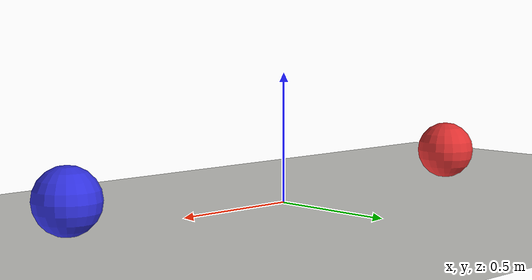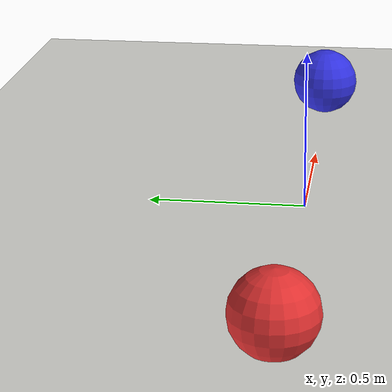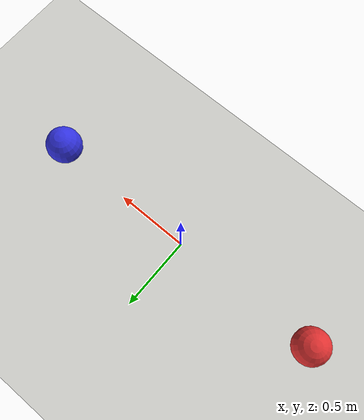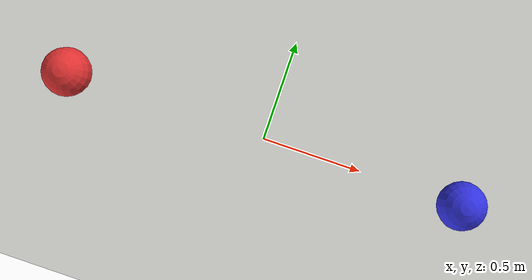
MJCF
<mujoco model="elastic_collision">
  <option timestep="0.04" gravity="0 0 0"/>
  <visual><global offwidth="320" offheight="240"/></visual>
  <worldbody>
    <light pos="0 -4 5"/>
    <camera name="track" pos="0 -6 4" xyaxes="1 0 0 0 0.6 0.8"/>
    <geom name="floor" type="plane" size="4 2 0.1" rgba="0.86 0.86 0.84 1"/>
    <body name="ball1" pos="-1 0 0.12">
      <freejoint name="ball1_free"/>
      <geom name="ball1_geom" type="sphere" size="0.12" mass="1" rgba="0.9 0.2 0.2 1"/>
    </body>
    <body name="ball2" pos="1 0 0.12">
      <freejoint name="ball2_free"/>
      <geom name="ball2_geom" type="sphere" size="0.12" mass="1" rgba="0.2 0.2 0.9 1"/>
    </body>
  </worldbody>
</mujoco>
